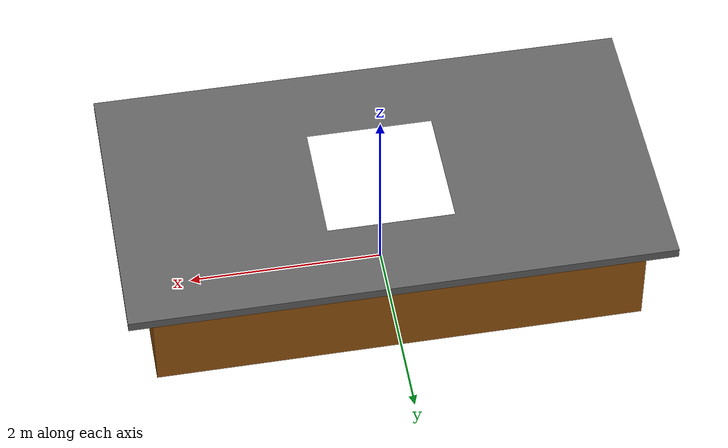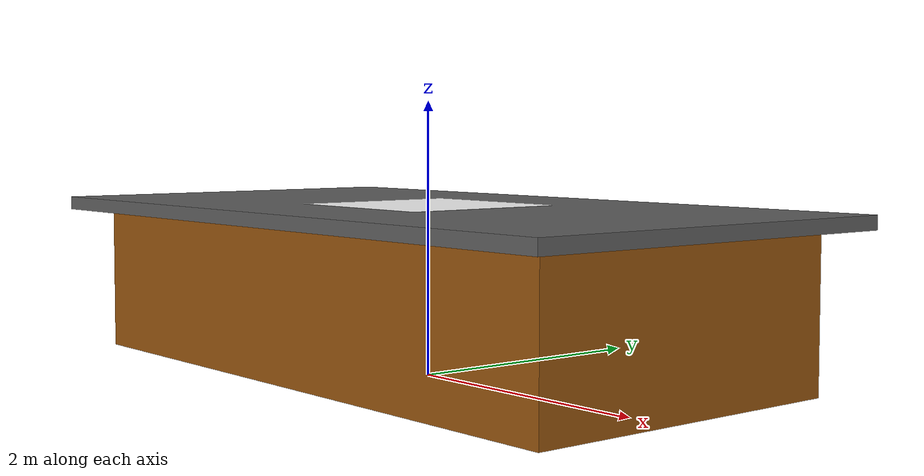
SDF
<?xml version="1.0" encoding="UTF-8"?>
<sdf version="1.9">
  <model name="trailer_aruco">
    <static>false</static>
    <self_collide>false</self_collide>
    <allow_auto_disable>false</allow_auto_disable>
    <link name="base_link">
      <gravity>false</gravity>
      <!-- The body bottom remains 5 cm above z=0 to avoid initial penetration. -->
      <visual name="body_visual">
        <pose>0 0 0.60 0 0 0</pose>
        <geometry><box><size>5.0 2.5 1.1</size></box></geometry>
        <material>
          <ambient>0.42 0.24 0.04 1</ambient>
          <diffuse>0.60 0.34 0.06 1</diffuse>
          <specular>0.10 0.10 0.10 1</specular>
        </material>
      </visual>
      <collision name="body_collision">
        <pose>0 0 0.60 0 0 0</pose>
        <geometry><box><size>5.0 2.5 1.1</size></box></geometry>
      </collision>

      <visual name="landing_deck_visual">
        <pose>0 0 1.20 0 0 0</pose>
        <geometry><box><size>5.5 3.0 0.1</size></box></geometry>
        <material>
          <ambient>0.30 0.30 0.30 1</ambient>
          <diffuse>0.38 0.38 0.38 1</diffuse>
          <specular>0.08 0.08 0.08 1</specular>
        </material>
      </visual>
      <collision name="landing_deck_collision">
        <pose>0 0 1.20 0 0 0</pose>
        <geometry><box><size>5.5 3.0 0.1</size></box></geometry>
      </collision>

      <!-- The PNG has a 60 px quiet zone around its 400 px ArUco square.
           A 1.30 m plane therefore renders the detectable marker at 1.00 m. -->
      <visual name="aruco_marker_visual">
        <pose>0 0 1.251 0 0 0</pose>
        <geometry><plane><normal>0 0 1</normal><size>1.3 1.3</size></plane></geometry>
        <material>
          <ambient>1 1 1 1</ambient>
          <diffuse>1 1 1 1</diffuse>
          <specular>0 0 0 1</specular>
          <pbr><metal>
            <albedo_map>model://aruco_marker_0/materials/textures/aruco_0.png</albedo_map>
            <metalness>0.0</metalness>
            <roughness>1.0</roughness>
          </metal></pbr>
        </material>
      </visual>

      <inertial>
        <pose>0 0 0.65 0 0 0</pose>
        <mass>1500</mass>
        <inertia>
          <ixx>932.5</ixx>
          <iyy>3276.25</iyy>
          <izz>3906.25</izz>
          <ixy>0</ixy><ixz>0</ixz><iyz>0</iyz>
        </inertia>
      </inertial>
    </link>

    <plugin filename="gz-sim-velocity-control-system"
            name="gz::sim::systems::VelocityControl">
      <topic>/model/trailer/cmd_vel</topic>
      <link_name>base_link</link_name>
    </plugin>
  </model>
</sdf>
